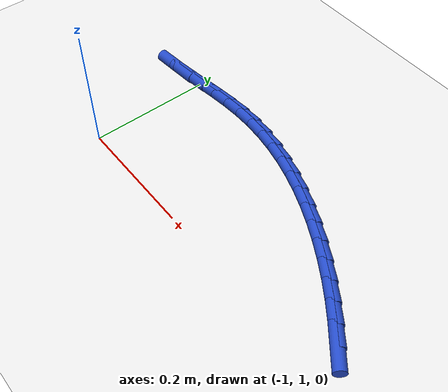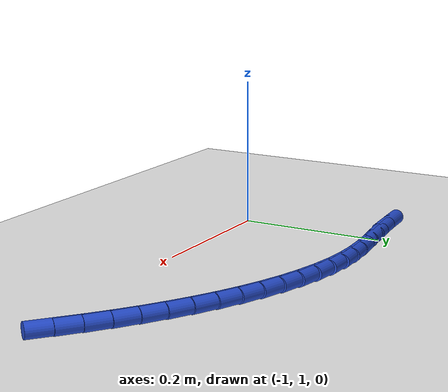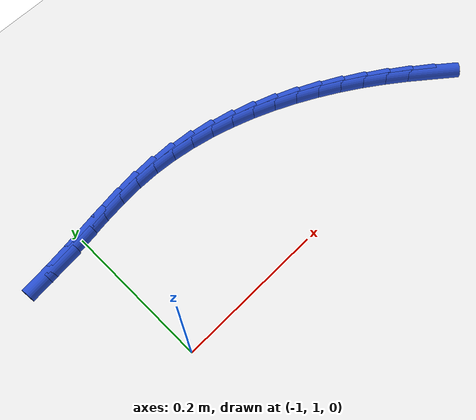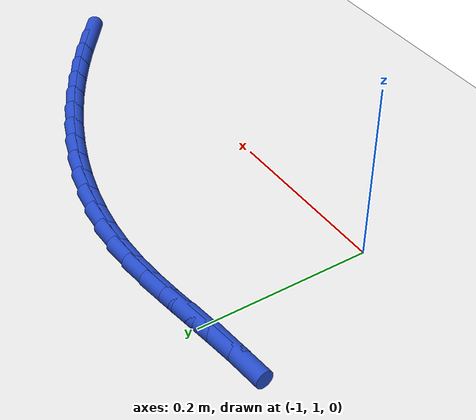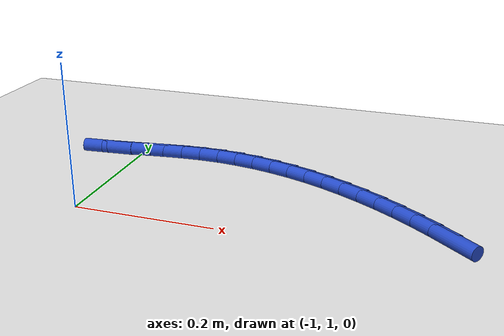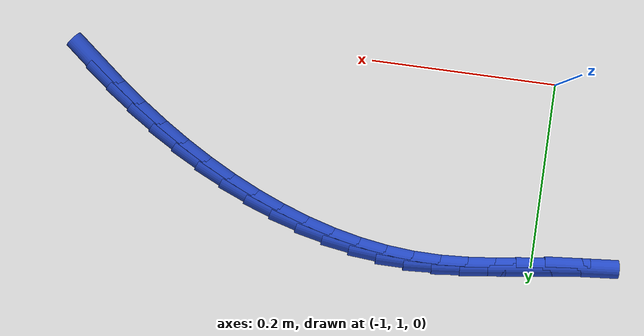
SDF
<sdf version="1.6">
 <world name="default">
  <model name="ground_plane">
   <static>1</static>
   <link name="link">
    <collision name="collision">
     <geometry><plane><normal>0 0 1</normal><size>100 100</size></plane></geometry>
     <surface><friction><ode><mu>100</mu><mu2>50</mu2></ode></friction></surface>
    </collision>
    <visual name="visual">
     <cast_shadows>0</cast_shadows>
     <geometry><plane><normal>0 0 1</normal><size>100 100</size></plane></geometry>
     <material>
      <script><uri>file://media/materials/scripts/gazebo.material</uri><name>Gazebo/WhiteGlow</name></script>
     </material>
    </visual>
   </link>
  </model>
  <model name="line">
   <link name="link_39">
    <pose>-0.5083223335118897 1.0454725379278413 0.01 0 1.57 -0.6874005775575889</pose>
    <collision name="collision">
     <geometry><cylinder><radius>0.01</radius><length>0.08</length></cylinder></geometry>
    </collision>
    <visual name="visual">
     <material>
      <script><name>Gazebo/Blue</name><uri>file://media/materials/scripts/gazebo.material</uri></script>
     </material>
     <geometry><cylinder><radius>0.01</radius><length>0.08</length></cylinder></geometry>
    </visual>
   </link>
   <link name="link_40">
    <pose>-0.5325909647073878 1.0653964860336338 0.01 0 1.57 -0.6500074067774555</pose>
    <collision name="collision">
     <geometry><cylinder><radius>0.01</radius><length>0.08</length></cylinder></geometry>
    </collision>
    <visual name="visual">
     <material>
      <script><name>Gazebo/Blue</name><uri>file://media/materials/scripts/gazebo.material</uri></script>
     </material>
     <geometry><cylinder><radius>0.01</radius><length>0.08</length></cylinder></geometry>
    </visual>
   </link>
   <link name="link_41">
    <pose>-0.5577413488123795 1.0845162126102197 0.01 0 1.57 -0.6114201795143959</pose>
    <collision name="collision">
     <geometry><cylinder><radius>0.01</radius><length>0.08</length></cylinder></geometry>
    </collision>
    <visual name="visual">
     <material>
      <script><name>Gazebo/Blue</name><uri>file://media/materials/scripts/gazebo.material</uri></script>
     </material>
     <geometry><cylinder><radius>0.01</radius><length>0.08</length></cylinder></geometry>
    </visual>
   </link>
   <link name="link_42">
    <pose>-0.583700137542635 1.102714229046263 0.01 0 1.57 -0.5712840585881714</pose>
    <collision name="collision">
     <geometry><cylinder><radius>0.01</radius><length>0.08</length></cylinder></geometry>
    </collision>
    <visual name="visual">
     <material>
      <script><name>Gazebo/Blue</name><uri>file://media/materials/scripts/gazebo.material</uri></script>
     </material>
     <geometry><cylinder><radius>0.01</radius><length>0.08</length></cylinder></geometry>
    </visual>
   </link>
   <link name="link_43">
    <pose>-0.6103942502731757 1.119872714793924 0.01 0 1.57 -0.5292535076300824</pose>
    <collision name="collision">
     <geometry><cylinder><radius>0.01</radius><length>0.08</length></cylinder></geometry>
    </collision>
    <visual name="visual">
     <material>
      <script><name>Gazebo/Blue</name><uri>file://media/materials/scripts/gazebo.material</uri></script>
     </material>
     <geometry><cylinder><radius>0.01</radius><length>0.08</length></cylinder></geometry>
    </visual>
   </link>
   <link name="link_44">
    <pose>-0.6377506063790225 1.1358738493053622 0.01 0 1.57 -0.48497644131076717</pose>
    <collision name="collision">
     <geometry><cylinder><radius>0.01</radius><length>0.08</length></cylinder></geometry>
    </collision>
    <visual name="visual">
     <material>
      <script><name>Gazebo/Blue</name><uri>file://media/materials/scripts/gazebo.material</uri></script>
     </material>
     <geometry><cylinder><radius>0.01</radius><length>0.08</length></cylinder></geometry>
    </visual>
   </link>
   <link name="link_45">
    <pose>-0.6656961252351976 1.1505998120327388 0.01 0 1.57 -0.4380944187464054</pose>
    <collision name="collision">
     <geometry><cylinder><radius>0.01</radius><length>0.08</length></cylinder></geometry>
    </collision>
    <visual name="visual">
     <material>
      <script><name>Gazebo/Blue</name><uri>file://media/materials/scripts/gazebo.material</uri></script>
     </material>
     <geometry><cylinder><radius>0.01</radius><length>0.08</length></cylinder></geometry>
    </visual>
   </link>
   <link name="link_46">
    <pose>-0.6941577262167213 1.163932782428213 0.01 0 1.57 -0.38824602931086394</pose>
    <collision name="collision">
     <geometry><cylinder><radius>0.01</radius><length>0.08</length></cylinder></geometry>
    </collision>
    <visual name="visual">
     <material>
      <script><name>Gazebo/Blue</name><uri>file://media/materials/scripts/gazebo.material</uri></script>
     </material>
     <geometry><cylinder><radius>0.01</radius><length>0.08</length></cylinder></geometry>
    </visual>
   </link>
   <link name="link_47">
    <pose>-0.7230623286986153 1.1757549399439458 0.01 0 1.57 -0.3350744713239371</pose>
    <collision name="collision">
     <geometry><cylinder><radius>0.01</radius><length>0.08</length></cylinder></geometry>
    </collision>
    <visual name="visual">
     <material>
      <script><name>Gazebo/Blue</name><uri>file://media/materials/scripts/gazebo.material</uri></script>
     </material>
     <geometry><cylinder><radius>0.01</radius><length>0.08</length></cylinder></geometry>
    </visual>
   </link>
   <link name="link_48">
    <pose>-0.7523368520559008 1.1859484640320972 0.01 0 1.57 -0.2782405397573371</pose>
    <collision name="collision">
     <geometry><cylinder><radius>0.01</radius><length>0.08</length></cylinder></geometry>
    </collision>
    <visual name="visual">
     <material>
      <script><name>Gazebo/Blue</name><uri>file://media/materials/scripts/gazebo.material</uri></script>
     </material>
     <geometry><cylinder><radius>0.01</radius><length>0.08</length></cylinder></geometry>
    </visual>
   </link>
   <link name="link_49">
    <pose>-0.7819082156635991 1.1943955341448278 0.01 0 1.57 -0.21744228618995098</pose>
    <collision name="collision">
     <geometry><cylinder><radius>0.01</radius><length>0.08</length></cylinder></geometry>
    </collision>
    <visual name="visual">
     <material>
      <script><name>Gazebo/Blue</name><uri>file://media/materials/scripts/gazebo.material</uri></script>
     </material>
     <geometry><cylinder><radius>0.01</radius><length>0.08</length></cylinder></geometry>
    </visual>
   </link>
   <link name="link_50">
    <pose>-0.8117033388967313 1.2009783297342966 0.01 0 1.57 -0.15244230610303708</pose>
    <collision name="collision">
     <geometry><cylinder><radius>0.01</radius><length>0.08</length></cylinder></geometry>
    </collision>
    <visual name="visual">
     <material>
      <script><name>Gazebo/Blue</name><uri>file://media/materials/scripts/gazebo.material</uri></script>
     </material>
     <geometry><cylinder><radius>0.01</radius><length>0.08</length></cylinder></geometry>
    </visual>
   </link>
   <link name="link_51">
    <pose>-0.8416491411303186 1.205579030252665 0.01 0 1.57 -0.08310269130032742</pose>
    <collision name="collision">
     <geometry><cylinder><radius>0.01</radius><length>0.08</length></cylinder></geometry>
    </collision>
    <visual name="visual">
     <material>
      <script><name>Gazebo/Blue</name><uri>file://media/materials/scripts/gazebo.material</uri></script>
     </material>
     <geometry><cylinder><radius>0.01</radius><length>0.08</length></cylinder></geometry>
    </visual>
   </link>
   <link name="link_52">
    <pose>-0.8716725417393829 1.208079815152093 0.01 0 1.57 -0.009743853470388659</pose>
    <collision name="collision">
     <geometry><cylinder><radius>0.01</radius><length>0.08</length></cylinder></geometry>
    </collision>
    <visual name="visual">
     <material>
      <script><name>Gazebo/Blue</name><uri>file://media/materials/scripts/gazebo.material</uri></script>
     </material>
     <geometry><cylinder><radius>0.01</radius><length>0.08</length></cylinder></geometry>
    </visual>
   </link>
   <link name="link_53">
    <pose>-0.9017021887058433 1.2083724288924713 0.01 0 1.57 0.056738624834997475</pose>
    <collision name="collision">
     <geometry><cylinder><radius>0.01</radius><length>0.08</length></cylinder></geometry>
    </collision>
    <visual name="visual">
     <material>
      <script><name>Gazebo/Blue</name><uri>file://media/materials/scripts/gazebo.material</uri></script>
     </material>
     <geometry><cylinder><radius>0.01</radius><length>0.08</length></cylinder></geometry>
    </visual>
   </link>
   <link name="link_54">
    <pose>-0.9317243024667585 1.2066671851693243 0.01 0 1.57 0.10297110367970945</pose>
    <collision name="collision">
     <geometry><cylinder><radius>0.01</radius><length>0.08</length></cylinder></geometry>
    </collision>
    <visual name="visual">
     <material>
      <script><name>Gazebo/Blue</name><uri>file://media/materials/scripts/gazebo.material</uri></script>
     </material>
     <geometry><cylinder><radius>0.01</radius><length>0.08</length></cylinder></geometry>
    </visual>
   </link>
   <link name="link_55">
    <pose>-0.9617947554054873 1.2035598071112181 0.01 0 1.57 0.12821438423738282</pose>
    <collision name="collision">
     <geometry><cylinder><radius>0.01</radius><length>0.08</length></cylinder></geometry>
    </collision>
    <visual name="visual">
     <material>
      <script><name>Gazebo/Blue</name><uri>file://media/materials/scripts/gazebo.material</uri></script>
     </material>
     <geometry><cylinder><radius>0.01</radius><length>0.08</length></cylinder></geometry>
    </visual>
   </link>
   <link name="link_56">
    <pose>-0.991973591917718 1.1996691031012097 0.01 0 1.57 0.13284030654886989</pose>
    <collision name="collision">
     <geometry><cylinder><radius>0.01</radius><length>0.08</length></cylinder></geometry>
    </collision>
    <visual name="visual">
     <material>
      <script><name>Gazebo/Blue</name><uri>file://media/materials/scripts/gazebo.material</uri></script>
     </material>
     <geometry><cylinder><radius>0.01</radius><length>0.08</length></cylinder></geometry>
    </visual>
   </link>
   <link name="link_57">
    <pose>-1.0223208563991373 1.1956138815223551 0.01 0 1.57 0.11723085197073539</pose>
    <collision name="collision">
     <geometry><cylinder><radius>0.01</radius><length>0.08</length></cylinder></geometry>
    </collision>
    <visual name="visual">
     <material>
      <script><name>Gazebo/Blue</name><uri>file://media/materials/scripts/gazebo.material</uri></script>
     </material>
     <geometry><cylinder><radius>0.01</radius><length>0.08</length></cylinder></geometry>
    </visual>
   </link>
   <link name="link_58">
    <pose>-1.0528965932454333 1.1920129507577117 0.01 0 1.57 0.08171919906218206</pose>
    <collision name="collision">
     <geometry><cylinder><radius>0.01</radius><length>0.08</length></cylinder></geometry>
    </collision>
    <visual name="visual">
     <material>
      <script><name>Gazebo/Blue</name><uri>file://media/materials/scripts/gazebo.material</uri></script>
     </material>
     <geometry><cylinder><radius>0.01</radius><length>0.08</length></cylinder></geometry>
    </visual>
   </link>
  </model>
 </world>
</sdf>
